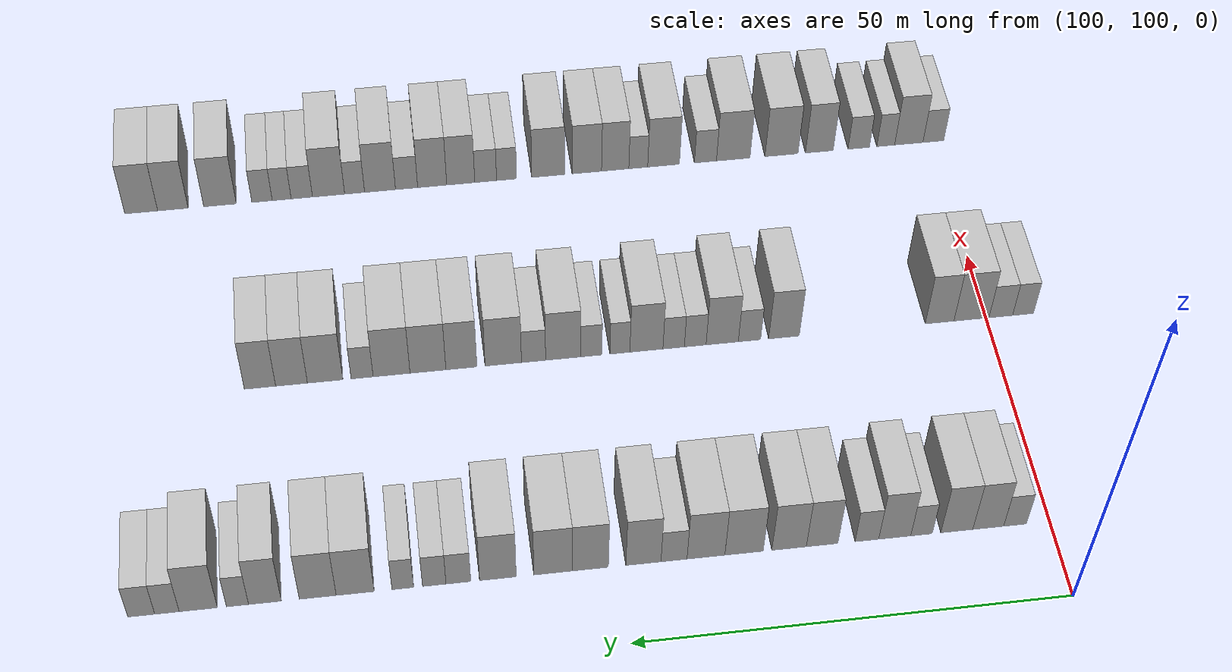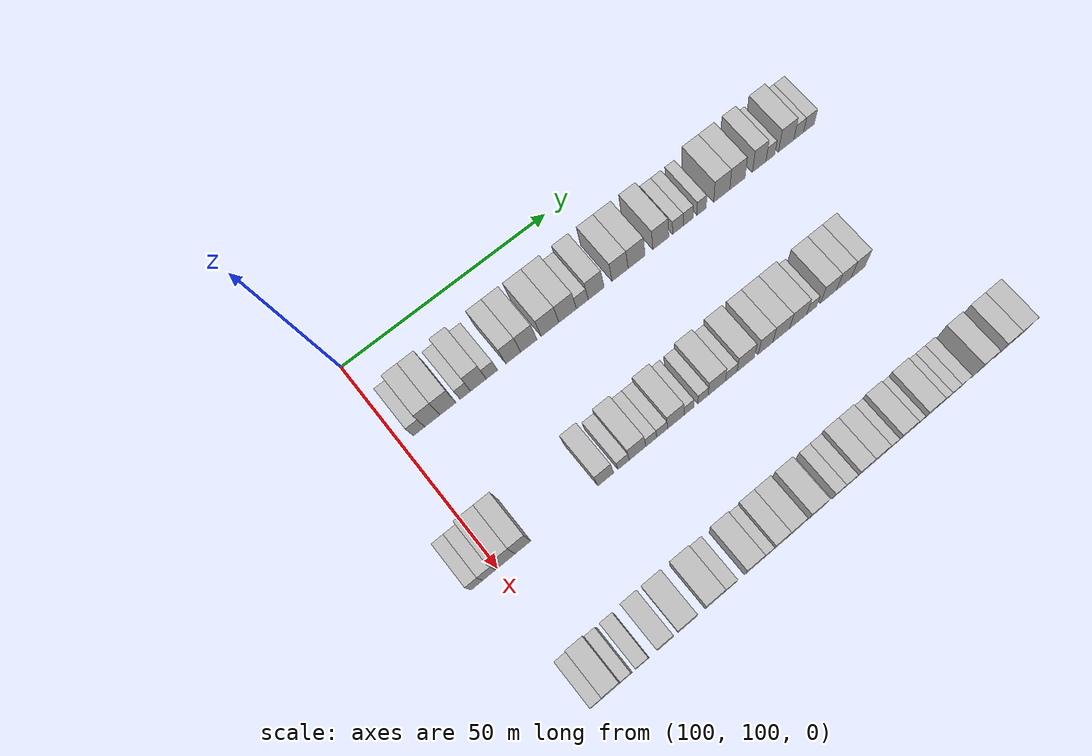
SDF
<sdf version="1.6">
 <world name="default">
  <model name="building_811">
   <static>1</static>
   <pose>115.0000 104.1184 0 0.000000 0.000000 0.000000</pose>
   <link name="link">
    <pose>0 0 3.00 0 0 0</pose>
    <collision name="collision"><geometry><box><size>10.0000 2.6853 6.0000</size></box></geometry></collision>
    <visual name="visual">
     <cast_shadows>0</cast_shadows>
     <geometry><box><size>10.0000 2.6853 6.0000</size></box></geometry>
     <material>
      <script>
       <uri>model://HANNAS_wall/materials/scripts</uri>
       <uri>model://HANNAS_wall/materials/textures</uri>
       <name>vrc/HANNAS_wall</name>
      </script>
     </material>
    </visual>
   </link>
  </model>
  <model name="building_812">
   <static>1</static>
   <pose>115.0000 107.2685 0 0.000000 0.000000 0.000000</pose>
   <link name="link">
    <pose>0 0 4.50 0 0 0</pose>
    <collision name="collision"><geometry><box><size>10.0000 3.6147 9.0000</size></box></geometry></collision>
    <visual name="visual">
     <cast_shadows>0</cast_shadows>
     <geometry><box><size>10.0000 3.6147 9.0000</size></box></geometry>
     <material>
      <script>
       <uri>model://HANNAS_wall/materials/scripts</uri>
       <uri>model://HANNAS_wall/materials/textures</uri>
       <name>vrc/HANNAS_wall</name>
      </script>
     </material>
    </visual>
   </link>
  </model>
  <model name="building_813">
   <static>1</static>
   <pose>115.0000 110.9510 0 0.000000 0.000000 0.000000</pose>
   <link name="link">
    <pose>0 0 4.50 0 0 0</pose>
    <collision name="collision"><geometry><box><size>10.0000 3.7504 9.0000</size></box></geometry></collision>
    <visual name="visual">
     <cast_shadows>0</cast_shadows>
     <geometry><box><size>10.0000 3.7504 9.0000</size></box></geometry>
     <material>
      <script>
       <uri>model://HANNAS_wall/materials/scripts</uri>
       <uri>model://HANNAS_wall/materials/textures</uri>
       <name>vrc/HANNAS_wall</name>
      </script>
     </material>
    </visual>
   </link>
  </model>
  <model name="building_814">
   <static>1</static>
   <pose>115.0000 115.0779 0 0.000000 0.000000 0.000000</pose>
   <link name="link">
    <pose>0 0 3.00 0 0 0</pose>
    <collision name="collision"><geometry><box><size>10.0000 2.5034 6.0000</size></box></geometry></collision>
    <visual name="visual">
     <cast_shadows>0</cast_shadows>
     <geometry><box><size>10.0000 2.5034 6.0000</size></box></geometry>
     <material>
      <script>
       <uri>model://HANNAS_wall/materials/scripts</uri>
       <uri>model://HANNAS_wall/materials/textures</uri>
       <name>vrc/HANNAS_wall</name>
      </script>
     </material>
    </visual>
   </link>
  </model>
  <model name="building_815">
   <static>1</static>
   <pose>115.0000 118.1943 0 0.000000 0.000000 0.000000</pose>
   <link name="link">
    <pose>0 0 4.50 0 0 0</pose>
    <collision name="collision"><geometry><box><size>10.0000 3.7294 9.0000</size></box></geometry></collision>
    <visual name="visual">
     <cast_shadows>0</cast_shadows>
     <geometry><box><size>10.0000 3.7294 9.0000</size></box></geometry>
     <material>
      <script>
       <uri>model://HANNAS_wall/materials/scripts</uri>
       <uri>model://HANNAS_wall/materials/textures</uri>
       <name>vrc/HANNAS_wall</name>
      </script>
     </material>
    </visual>
   </link>
  </model>
  <model name="building_816">
   <static>1</static>
   <pose>115.0000 121.4324 0 0.000000 0.000000 0.000000</pose>
   <link name="link">
    <pose>0 0 3.00 0 0 0</pose>
    <collision name="collision"><geometry><box><size>10.0000 2.7469 6.0000</size></box></geometry></collision>
    <visual name="visual">
     <cast_shadows>0</cast_shadows>
     <geometry><box><size>10.0000 2.7469 6.0000</size></box></geometry>
     <material>
      <script>
       <uri>model://HANNAS_wall/materials/scripts</uri>
       <uri>model://HANNAS_wall/materials/textures</uri>
       <name>vrc/HANNAS_wall</name>
      </script>
     </material>
    </visual>
   </link>
  </model>
  <model name="building_817">
   <static>1</static>
   <pose>115.0000 126.6344 0 0.000000 0.000000 0.000000</pose>
   <link name="link">
    <pose>0 0 4.50 0 0 0</pose>
    <collision name="collision"><geometry><box><size>10.0000 3.6572 9.0000</size></box></geometry></collision>
    <visual name="visual">
     <cast_shadows>0</cast_shadows>
     <geometry><box><size>10.0000 3.6572 9.0000</size></box></geometry>
     <material>
      <script>
       <uri>model://HANNAS_wall/materials/scripts</uri>
       <uri>model://HANNAS_wall/materials/textures</uri>
       <name>vrc/HANNAS_wall</name>
      </script>
     </material>
    </visual>
   </link>
  </model>
  <model name="building_818">
   <static>1</static>
   <pose>115.0000 130.4544 0 0.000000 0.000000 0.000000</pose>
   <link name="link">
    <pose>0 0 4.50 0 0 0</pose>
    <collision name="collision"><geometry><box><size>10.0000 3.9827 9.0000</size></box></geometry></collision>
    <visual name="visual">
     <cast_shadows>0</cast_shadows>
     <geometry><box><size>10.0000 3.9827 9.0000</size></box></geometry>
     <material>
      <script>
       <uri>model://HANNAS_wall/materials/scripts</uri>
       <uri>model://HANNAS_wall/materials/textures</uri>
       <name>vrc/HANNAS_wall</name>
      </script>
     </material>
    </visual>
   </link>
  </model>
  <model name="building_819">
   <static>1</static>
   <pose>115.0000 135.6509 0 0.000000 0.000000 0.000000</pose>
   <link name="link">
    <pose>0 0 4.50 0 0 0</pose>
    <collision name="collision"><geometry><box><size>10.0000 4.4103 9.0000</size></box></geometry></collision>
    <visual name="visual">
     <cast_shadows>0</cast_shadows>
     <geometry><box><size>10.0000 4.4103 9.0000</size></box></geometry>
     <material>
      <script>
       <uri>model://HANNAS_wall/materials/scripts</uri>
       <uri>model://HANNAS_wall/materials/textures</uri>
       <name>vrc/HANNAS_wall</name>
      </script>
     </material>
    </visual>
   </link>
  </model>
  <model name="building_820">
   <static>1</static>
   <pose>115.0000 140.0304 0 0.000000 0.000000 0.000000</pose>
   <link name="link">
    <pose>0 0 4.50 0 0 0</pose>
    <collision name="collision"><geometry><box><size>10.0000 4.3486 9.0000</size></box></geometry></collision>
    <visual name="visual">
     <cast_shadows>0</cast_shadows>
     <geometry><box><size>10.0000 4.3486 9.0000</size></box></geometry>
     <material>
      <script>
       <uri>model://HANNAS_wall/materials/scripts</uri>
       <uri>model://HANNAS_wall/materials/textures</uri>
       <name>vrc/HANNAS_wall</name>
      </script>
     </material>
    </visual>
   </link>
  </model>
  <model name="building_821">
   <static>1</static>
   <pose>115.0000 143.6980 0 0.000000 0.000000 0.000000</pose>
   <link name="link">
    <pose>0 0 3.00 0 0 0</pose>
    <collision name="collision"><geometry><box><size>10.0000 2.9866 6.0000</size></box></geometry></collision>
    <visual name="visual">
     <cast_shadows>0</cast_shadows>
     <geometry><box><size>10.0000 2.9866 6.0000</size></box></geometry>
     <material>
      <script>
       <uri>model://HANNAS_wall/materials/scripts</uri>
       <uri>model://HANNAS_wall/materials/textures</uri>
       <name>vrc/HANNAS_wall</name>
      </script>
     </material>
    </visual>
   </link>
  </model>
  <model name="building_822">
   <static>1</static>
   <pose>115.0000 147.1989 0 0.000000 0.000000 0.000000</pose>
   <link name="link">
    <pose>0 0 4.50 0 0 0</pose>
    <collision name="collision"><geometry><box><size>10.0000 4.0150 9.0000</size></box></geometry></collision>
    <visual name="visual">
     <cast_shadows>0</cast_shadows>
     <geometry><box><size>10.0000 4.0150 9.0000</size></box></geometry>
     <material>
      <script>
       <uri>model://HANNAS_wall/materials/scripts</uri>
       <uri>model://HANNAS_wall/materials/textures</uri>
       <name>vrc/HANNAS_wall</name>
      </script>
     </material>
    </visual>
   </link>
  </model>
  <model name="building_823">
   <static>1</static>
   <pose>115.0000 153.2614 0 0.000000 0.000000 0.000000</pose>
   <link name="link">
    <pose>0 0 4.50 0 0 0</pose>
    <collision name="collision"><geometry><box><size>10.0000 4.1101 9.0000</size></box></geometry></collision>
    <visual name="visual">
     <cast_shadows>0</cast_shadows>
     <geometry><box><size>10.0000 4.1101 9.0000</size></box></geometry>
     <material>
      <script>
       <uri>model://HANNAS_wall/materials/scripts</uri>
       <uri>model://HANNAS_wall/materials/textures</uri>
       <name>vrc/HANNAS_wall</name>
      </script>
     </material>
    </visual>
   </link>
  </model>
  <model name="building_824">
   <static>1</static>
   <pose>115.0000 157.4975 0 0.000000 0.000000 0.000000</pose>
   <link name="link">
    <pose>0 0 4.50 0 0 0</pose>
    <collision name="collision"><geometry><box><size>10.0000 4.3620 9.0000</size></box></geometry></collision>
    <visual name="visual">
     <cast_shadows>0</cast_shadows>
     <geometry><box><size>10.0000 4.3620 9.0000</size></box></geometry>
     <material>
      <script>
       <uri>model://HANNAS_wall/materials/scripts</uri>
       <uri>model://HANNAS_wall/materials/textures</uri>
       <name>vrc/HANNAS_wall</name>
      </script>
     </material>
    </visual>
   </link>
  </model>
  <model name="building_825">
   <static>1</static>
   <pose>115.0000 163.7490 0 0.000000 0.000000 0.000000</pose>
   <link name="link">
    <pose>0 0 4.50 0 0 0</pose>
    <collision name="collision"><geometry><box><size>10.0000 4.1409 9.0000</size></box></geometry></collision>
    <visual name="visual">
     <cast_shadows>0</cast_shadows>
     <geometry><box><size>10.0000 4.1409 9.0000</size></box></geometry>
     <material>
      <script>
       <uri>model://HANNAS_wall/materials/scripts</uri>
       <uri>model://HANNAS_wall/materials/textures</uri>
       <name>vrc/HANNAS_wall</name>
      </script>
     </material>
    </visual>
   </link>
  </model>
  <model name="building_826">
   <static>1</static>
   <pose>115.0000 168.2130 0 0.000000 0.000000 0.000000</pose>
   <link name="link">
    <pose>0 0 3.00 0 0 0</pose>
    <collision name="collision"><geometry><box><size>10.0000 2.7871 6.0000</size></box></geometry></collision>
    <visual name="visual">
     <cast_shadows>0</cast_shadows>
     <geometry><box><size>10.0000 2.7871 6.0000</size></box></geometry>
     <material>
      <script>
       <uri>model://HANNAS_wall/materials/scripts</uri>
       <uri>model://HANNAS_wall/materials/textures</uri>
       <name>vrc/HANNAS_wall</name>
      </script>
     </material>
    </visual>
   </link>
  </model>
  <model name="building_827">
   <static>1</static>
   <pose>115.0000 170.9270 0 0.000000 0.000000 0.000000</pose>
   <link name="link">
    <pose>0 0 3.00 0 0 0</pose>
    <collision name="collision"><geometry><box><size>10.0000 2.6410 6.0000</size></box></geometry></collision>
    <visual name="visual">
     <cast_shadows>0</cast_shadows>
     <geometry><box><size>10.0000 2.6410 6.0000</size></box></geometry>
     <material>
      <script>
       <uri>model://HANNAS_wall/materials/scripts</uri>
       <uri>model://HANNAS_wall/materials/textures</uri>
       <name>vrc/HANNAS_wall</name>
      </script>
     </material>
    </visual>
   </link>
  </model>
  <model name="building_828">
   <static>1</static>
   <pose>115.0000 174.4641 0 0.000000 0.000000 0.000000</pose>
   <link name="link">
    <pose>0 0 3.00 0 0 0</pose>
    <collision name="collision"><geometry><box><size>10.0000 2.4331 6.0000</size></box></geometry></collision>
    <visual name="visual">
     <cast_shadows>0</cast_shadows>
     <geometry><box><size>10.0000 2.4331 6.0000</size></box></geometry>
     <material>
      <script>
       <uri>model://HANNAS_wall/materials/scripts</uri>
       <uri>model://HANNAS_wall/materials/textures</uri>
       <name>vrc/HANNAS_wall</name>
      </script>
     </material>
    </visual>
   </link>
  </model>
  <model name="building_829">
   <static>1</static>
   <pose>115.0000 179.8125 0 0.000000 0.000000 0.000000</pose>
   <link name="link">
    <pose>0 0 4.50 0 0 0</pose>
    <collision name="collision"><geometry><box><size>10.0000 4.2635 9.0000</size></box></geometry></collision>
    <visual name="visual">
     <cast_shadows>0</cast_shadows>
     <geometry><box><size>10.0000 4.2635 9.0000</size></box></geometry>
     <material>
      <script>
       <uri>model://HANNAS_wall/materials/scripts</uri>
       <uri>model://HANNAS_wall/materials/textures</uri>
       <name>vrc/HANNAS_wall</name>
      </script>
     </material>
    </visual>
   </link>
  </model>
  <model name="building_830">
   <static>1</static>
   <pose>115.0000 184.0027 0 0.000000 0.000000 0.000000</pose>
   <link name="link">
    <pose>0 0 4.50 0 0 0</pose>
    <collision name="collision"><geometry><box><size>10.0000 4.1170 9.0000</size></box></geometry></collision>
    <visual name="visual">
     <cast_shadows>0</cast_shadows>
     <geometry><box><size>10.0000 4.1170 9.0000</size></box></geometry>
     <material>
      <script>
       <uri>model://HANNAS_wall/materials/scripts</uri>
       <uri>model://HANNAS_wall/materials/textures</uri>
       <name>vrc/HANNAS_wall</name>
      </script>
     </material>
    </visual>
   </link>
  </model>
  <model name="building_831">
   <static>1</static>
   <pose>115.0000 189.8861 0 0.000000 0.000000 0.000000</pose>
   <link name="link">
    <pose>0 0 4.50 0 0 0</pose>
    <collision name="collision"><geometry><box><size>10.0000 3.6497 9.0000</size></box></geometry></collision>
    <visual name="visual">
     <cast_shadows>0</cast_shadows>
     <geometry><box><size>10.0000 3.6497 9.0000</size></box></geometry>
     <material>
      <script>
       <uri>model://HANNAS_wall/materials/scripts</uri>
       <uri>model://HANNAS_wall/materials/textures</uri>
       <name>vrc/HANNAS_wall</name>
      </script>
     </material>
    </visual>
   </link>
  </model>
  <model name="building_832">
   <static>1</static>
   <pose>115.0000 192.9405 0 0.000000 0.000000 0.000000</pose>
   <link name="link">
    <pose>0 0 3.00 0 0 0</pose>
    <collision name="collision"><geometry><box><size>10.0000 2.4592 6.0000</size></box></geometry></collision>
    <visual name="visual">
     <cast_shadows>0</cast_shadows>
     <geometry><box><size>10.0000 2.4592 6.0000</size></box></geometry>
     <material>
      <script>
       <uri>model://HANNAS_wall/materials/scripts</uri>
       <uri>model://HANNAS_wall/materials/textures</uri>
       <name>vrc/HANNAS_wall</name>
      </script>
     </material>
    </visual>
   </link>
  </model>
  <model name="building_833">
   <static>1</static>
   <pose>115.0000 197.2885 0 0.000000 0.000000 0.000000</pose>
   <link name="link">
    <pose>0 0 4.50 0 0 0</pose>
    <collision name="collision"><geometry><box><size>10.0000 4.2367 9.0000</size></box></geometry></collision>
    <visual name="visual">
     <cast_shadows>0</cast_shadows>
     <geometry><box><size>10.0000 4.2367 9.0000</size></box></geometry>
     <material>
      <script>
       <uri>model://HANNAS_wall/materials/scripts</uri>
       <uri>model://HANNAS_wall/materials/textures</uri>
       <name>vrc/HANNAS_wall</name>
      </script>
     </material>
    </visual>
   </link>
  </model>
  <model name="building_834">
   <static>1</static>
   <pose>115.0000 200.7582 0 0.000000 0.000000 0.000000</pose>
   <link name="link">
    <pose>0 0 3.00 0 0 0</pose>
    <collision name="collision"><geometry><box><size>10.0000 2.7027 6.0000</size></box></geometry></collision>
    <visual name="visual">
     <cast_shadows>0</cast_shadows>
     <geometry><box><size>10.0000 2.7027 6.0000</size></box></geometry>
     <material>
      <script>
       <uri>model://HANNAS_wall/materials/scripts</uri>
       <uri>model://HANNAS_wall/materials/textures</uri>
       <name>vrc/HANNAS_wall</name>
      </script>
     </material>
    </visual>
   </link>
  </model>
  <model name="building_835">
   <static>1</static>
   <pose>115.0000 203.5942 0 0.000000 0.000000 0.000000</pose>
   <link name="link">
    <pose>0 0 3.00 0 0 0</pose>
    <collision name="collision"><geometry><box><size>10.0000 2.9694 6.0000</size></box></geometry></collision>
    <visual name="visual">
     <cast_shadows>0</cast_shadows>
     <geometry><box><size>10.0000 2.9694 6.0000</size></box></geometry>
     <material>
      <script>
       <uri>model://HANNAS_wall/materials/scripts</uri>
       <uri>model://HANNAS_wall/materials/textures</uri>
       <name>vrc/HANNAS_wall</name>
      </script>
     </material>
    </visual>
   </link>
  </model>
  <model name="building_1036">
   <static>1</static>
   <pose>145.0000 95.3506 0 0.000000 0.000000 0.000000</pose>
   <link name="link">
    <pose>0 0 3.00 0 0 0</pose>
    <collision name="collision"><geometry><box><size>10.0000 2.6429 6.0000</size></box></geometry></collision>
    <visual name="visual">
     <cast_shadows>0</cast_shadows>
     <geometry><box><size>10.0000 2.6429 6.0000</size></box></geometry>
     <material>
      <script>
       <uri>model://HANNAS_wall/materials/scripts</uri>
       <uri>model://HANNAS_wall/materials/textures</uri>
       <name>vrc/HANNAS_wall</name>
      </script>
     </material>
    </visual>
   </link>
  </model>
  <model name="building_1037">
   <static>1</static>
   <pose>145.0000 98.1691 0 0.000000 0.000000 0.000000</pose>
   <link name="link">
    <pose>0 0 3.00 0 0 0</pose>
    <collision name="collision"><geometry><box><size>10.0000 2.9940 6.0000</size></box></geometry></collision>
    <visual name="visual">
     <cast_shadows>0</cast_shadows>
     <geometry><box><size>10.0000 2.9940 6.0000</size></box></geometry>
     <material>
      <script>
       <uri>model://HANNAS_wall/materials/scripts</uri>
       <uri>model://HANNAS_wall/materials/textures</uri>
       <name>vrc/HANNAS_wall</name>
      </script>
     </material>
    </visual>
   </link>
  </model>
  <model name="building_1038">
   <static>1</static>
   <pose>145.0000 101.8803 0 0.000000 0.000000 0.000000</pose>
   <link name="link">
    <pose>0 0 4.50 0 0 0</pose>
    <collision name="collision"><geometry><box><size>10.0000 4.4284 9.0000</size></box></geometry></collision>
    <visual name="visual">
     <cast_shadows>0</cast_shadows>
     <geometry><box><size>10.0000 4.4284 9.0000</size></box></geometry>
     <material>
      <script>
       <uri>model://HANNAS_wall/materials/scripts</uri>
       <uri>model://HANNAS_wall/materials/textures</uri>
       <name>vrc/HANNAS_wall</name>
      </script>
     </material>
    </visual>
   </link>
  </model>
  <model name="building_1039">
   <static>1</static>
   <pose>145.0000 105.9055 0 0.000000 0.000000 0.000000</pose>
   <link name="link">
    <pose>0 0 4.50 0 0 0</pose>
    <collision name="collision"><geometry><box><size>10.0000 3.6221 9.0000</size></box></geometry></collision>
    <visual name="visual">
     <cast_shadows>0</cast_shadows>
     <geometry><box><size>10.0000 3.6221 9.0000</size></box></geometry>
     <material>
      <script>
       <uri>model://HANNAS_wall/materials/scripts</uri>
       <uri>model://HANNAS_wall/materials/textures</uri>
       <name>vrc/HANNAS_wall</name>
      </script>
     </material>
    </visual>
   </link>
  </model>
  <model name="building_1040">
   <static>1</static>
   <pose>145.0000 125.4423 0 0.000000 0.000000 0.000000</pose>
   <link name="link">
    <pose>0 0 4.50 0 0 0</pose>
    <collision name="collision"><geometry><box><size>10.0000 3.8171 9.0000</size></box></geometry></collision>
    <visual name="visual">
     <cast_shadows>0</cast_shadows>
     <geometry><box><size>10.0000 3.8171 9.0000</size></box></geometry>
     <material>
      <script>
       <uri>model://HANNAS_wall/materials/scripts</uri>
       <uri>model://HANNAS_wall/materials/textures</uri>
       <name>vrc/HANNAS_wall</name>
      </script>
     </material>
    </visual>
   </link>
  </model>
  <model name="building_1041">
   <static>1</static>
   <pose>145.0000 129.7371 0 0.000000 0.000000 0.000000</pose>
   <link name="link">
    <pose>0 0 3.00 0 0 0</pose>
    <collision name="collision"><geometry><box><size>10.0000 2.7726 6.0000</size></box></geometry></collision>
    <visual name="visual">
     <cast_shadows>0</cast_shadows>
     <geometry><box><size>10.0000 2.7726 6.0000</size></box></geometry>
     <material>
      <script>
       <uri>model://HANNAS_wall/materials/scripts</uri>
       <uri>model://HANNAS_wall/materials/textures</uri>
       <name>vrc/HANNAS_wall</name>
      </script>
     </material>
    </visual>
   </link>
  </model>
  <model name="building_1042">
   <static>1</static>
   <pose>145.0000 133.1251 0 0.000000 0.000000 0.000000</pose>
   <link name="link">
    <pose>0 0 4.50 0 0 0</pose>
    <collision name="collision"><geometry><box><size>10.0000 4.0035 9.0000</size></box></geometry></collision>
    <visual name="visual">
     <cast_shadows>0</cast_shadows>
     <geometry><box><size>10.0000 4.0035 9.0000</size></box></geometry>
     <material>
      <script>
       <uri>model://HANNAS_wall/materials/scripts</uri>
       <uri>model://HANNAS_wall/materials/textures</uri>
       <name>vrc/HANNAS_wall</name>
      </script>
     </material>
    </visual>
   </link>
  </model>
  <model name="building_1043">
   <static>1</static>
   <pose>145.0000 136.4717 0 0.000000 0.000000 0.000000</pose>
   <link name="link">
    <pose>0 0 3.00 0 0 0</pose>
    <collision name="collision"><geometry><box><size>10.0000 2.6896 6.0000</size></box></geometry></collision>
    <visual name="visual">
     <cast_shadows>0</cast_shadows>
     <geometry><box><size>10.0000 2.6896 6.0000</size></box></geometry>
     <material>
      <script>
       <uri>model://HANNAS_wall/materials/scripts</uri>
       <uri>model://HANNAS_wall/materials/textures</uri>
       <name>vrc/HANNAS_wall</name>
      </script>
     </material>
    </visual>
   </link>
  </model>
  <model name="building_1044">
   <static>1</static>
   <pose>145.0000 139.1422 0 0.000000 0.000000 0.000000</pose>
   <link name="link">
    <pose>0 0 3.00 0 0 0</pose>
    <collision name="collision"><geometry><box><size>10.0000 2.6515 6.0000</size></box></geometry></collision>
    <visual name="visual">
     <cast_shadows>0</cast_shadows>
     <geometry><box><size>10.0000 2.6515 6.0000</size></box></geometry>
     <material>
      <script>
       <uri>model://HANNAS_wall/materials/scripts</uri>
       <uri>model://HANNAS_wall/materials/textures</uri>
       <name>vrc/HANNAS_wall</name>
      </script>
     </material>
    </visual>
   </link>
  </model>
  <model name="building_1045">
   <static>1</static>
   <pose>145.0000 142.5141 0 0.000000 0.000000 0.000000</pose>
   <link name="link">
    <pose>0 0 4.50 0 0 0</pose>
    <collision name="collision"><geometry><box><size>10.0000 4.0924 9.0000</size></box></geometry></collision>
    <visual name="visual">
     <cast_shadows>0</cast_shadows>
     <geometry><box><size>10.0000 4.0924 9.0000</size></box></geometry>
     <material>
      <script>
       <uri>model://HANNAS_wall/materials/scripts</uri>
       <uri>model://HANNAS_wall/materials/textures</uri>
       <name>vrc/HANNAS_wall</name>
      </script>
     </material>
    </visual>
   </link>
  </model>
  <model name="building_1046">
   <static>1</static>
   <pose>145.0000 145.7862 0 0.000000 0.000000 0.000000</pose>
   <link name="link">
    <pose>0 0 3.00 0 0 0</pose>
    <collision name="collision"><geometry><box><size>10.0000 2.4518 6.0000</size></box></geometry></collision>
    <visual name="visual">
     <cast_shadows>0</cast_shadows>
     <geometry><box><size>10.0000 2.4518 6.0000</size></box></geometry>
     <material>
      <script>
       <uri>model://HANNAS_wall/materials/scripts</uri>
       <uri>model://HANNAS_wall/materials/textures</uri>
       <name>vrc/HANNAS_wall</name>
      </script>
     </material>
    </visual>
   </link>
  </model>
  <model name="building_1047">
   <static>1</static>
   <pose>145.0000 149.3143 0 0.000000 0.000000 0.000000</pose>
   <link name="link">
    <pose>0 0 3.00 0 0 0</pose>
    <collision name="collision"><geometry><box><size>10.0000 2.6044 6.0000</size></box></geometry></collision>
    <visual name="visual">
     <cast_shadows>0</cast_shadows>
     <geometry><box><size>10.0000 2.6044 6.0000</size></box></geometry>
     <material>
      <script>
       <uri>model://HANNAS_wall/materials/scripts</uri>
       <uri>model://HANNAS_wall/materials/textures</uri>
       <name>vrc/HANNAS_wall</name>
      </script>
     </material>
    </visual>
   </link>
  </model>
  <model name="building_1048">
   <static>1</static>
   <pose>145.0000 152.7663 0 0.000000 0.000000 0.000000</pose>
   <link name="link">
    <pose>0 0 4.50 0 0 0</pose>
    <collision name="collision"><geometry><box><size>10.0000 4.2996 9.0000</size></box></geometry></collision>
    <visual name="visual">
     <cast_shadows>0</cast_shadows>
     <geometry><box><size>10.0000 4.2996 9.0000</size></box></geometry>
     <material>
      <script>
       <uri>model://HANNAS_wall/materials/scripts</uri>
       <uri>model://HANNAS_wall/materials/textures</uri>
       <name>vrc/HANNAS_wall</name>
      </script>
     </material>
    </visual>
   </link>
  </model>
  <model name="building_1049">
   <static>1</static>
   <pose>145.0000 156.3941 0 0.000000 0.000000 0.000000</pose>
   <link name="link">
    <pose>0 0 3.00 0 0 0</pose>
    <collision name="collision"><geometry><box><size>10.0000 2.9559 6.0000</size></box></geometry></collision>
    <visual name="visual">
     <cast_shadows>0</cast_shadows>
     <geometry><box><size>10.0000 2.9559 6.0000</size></box></geometry>
     <material>
      <script>
       <uri>model://HANNAS_wall/materials/scripts</uri>
       <uri>model://HANNAS_wall/materials/textures</uri>
       <name>vrc/HANNAS_wall</name>
      </script>
     </material>
    </visual>
   </link>
  </model>
  <model name="building_1050">
   <static>1</static>
   <pose>145.0000 160.0921 0 0.000000 0.000000 0.000000</pose>
   <link name="link">
    <pose>0 0 4.50 0 0 0</pose>
    <collision name="collision"><geometry><box><size>10.0000 4.4401 9.0000</size></box></geometry></collision>
    <visual name="visual">
     <cast_shadows>0</cast_shadows>
     <geometry><box><size>10.0000 4.4401 9.0000</size></box></geometry>
     <material>
      <script>
       <uri>model://HANNAS_wall/materials/scripts</uri>
       <uri>model://HANNAS_wall/materials/textures</uri>
       <name>vrc/HANNAS_wall</name>
      </script>
     </material>
    </visual>
   </link>
  </model>
  <model name="building_1051">
   <static>1</static>
   <pose>145.0000 165.2027 0 0.000000 0.000000 0.000000</pose>
   <link name="link">
    <pose>0 0 4.50 0 0 0</pose>
    <collision name="collision"><geometry><box><size>10.0000 3.7811 9.0000</size></box></geometry></collision>
    <visual name="visual">
     <cast_shadows>0</cast_shadows>
     <geometry><box><size>10.0000 3.7811 9.0000</size></box></geometry>
     <material>
      <script>
       <uri>model://HANNAS_wall/materials/scripts</uri>
       <uri>model://HANNAS_wall/materials/textures</uri>
       <name>vrc/HANNAS_wall</name>
      </script>
     </material>
    </visual>
   </link>
  </model>
  <model name="building_1052">
   <static>1</static>
   <pose>145.0000 169.2725 0 0.000000 0.000000 0.000000</pose>
   <link name="link">
    <pose>0 0 4.50 0 0 0</pose>
    <collision name="collision"><geometry><box><size>10.0000 4.3585 9.0000</size></box></geometry></collision>
    <visual name="visual">
     <cast_shadows>0</cast_shadows>
     <geometry><box><size>10.0000 4.3585 9.0000</size></box></geometry>
     <material>
      <script>
       <uri>model://HANNAS_wall/materials/scripts</uri>
       <uri>model://HANNAS_wall/materials/textures</uri>
       <name>vrc/HANNAS_wall</name>
      </script>
     </material>
    </visual>
   </link>
  </model>
  <model name="building_1053">
   <static>1</static>
   <pose>145.0000 173.6881 0 0.000000 0.000000 0.000000</pose>
   <link name="link">
    <pose>0 0 4.50 0 0 0</pose>
    <collision name="collision"><geometry><box><size>10.0000 4.4727 9.0000</size></box></geometry></collision>
    <visual name="visual">
     <cast_shadows>0</cast_shadows>
     <geometry><box><size>10.0000 4.4727 9.0000</size></box></geometry>
     <material>
      <script>
       <uri>model://HANNAS_wall/materials/scripts</uri>
       <uri>model://HANNAS_wall/materials/textures</uri>
       <name>vrc/HANNAS_wall</name>
      </script>
     </material>
    </visual>
   </link>
  </model>
  <model name="building_1054">
   <static>1</static>
   <pose>145.0000 177.2541 0 0.000000 0.000000 0.000000</pose>
   <link name="link">
    <pose>0 0 3.00 0 0 0</pose>
    <collision name="collision"><geometry><box><size>10.0000 2.6593 6.0000</size></box></geometry></collision>
    <visual name="visual">
     <cast_shadows>0</cast_shadows>
     <geometry><box><size>10.0000 2.6593 6.0000</size></box></geometry>
     <material>
      <script>
       <uri>model://HANNAS_wall/materials/scripts</uri>
       <uri>model://HANNAS_wall/materials/textures</uri>
       <name>vrc/HANNAS_wall</name>
      </script>
     </material>
    </visual>
   </link>
  </model>
  <model name="building_1055">
   <static>1</static>
   <pose>145.0000 181.7258 0 0.000000 0.000000 0.000000</pose>
   <link name="link">
    <pose>0 0 4.50 0 0 0</pose>
    <collision name="collision"><geometry><box><size>10.0000 4.2842 9.0000</size></box></geometry></collision>
    <visual name="visual">
     <cast_shadows>0</cast_shadows>
     <geometry><box><size>10.0000 4.2842 9.0000</size></box></geometry>
     <material>
      <script>
       <uri>model://HANNAS_wall/materials/scripts</uri>
       <uri>model://HANNAS_wall/materials/textures</uri>
       <name>vrc/HANNAS_wall</name>
      </script>
     </material>
    </visual>
   </link>
  </model>
  <model name="building_1056">
   <static>1</static>
   <pose>145.0000 185.7813 0 0.000000 0.000000 0.000000</pose>
   <link name="link">
    <pose>0 0 4.50 0 0 0</pose>
    <collision name="collision"><geometry><box><size>10.0000 3.8268 9.0000</size></box></geometry></collision>
    <visual name="visual">
     <cast_shadows>0</cast_shadows>
     <geometry><box><size>10.0000 3.8268 9.0000</size></box></geometry>
     <material>
      <script>
       <uri>model://HANNAS_wall/materials/scripts</uri>
       <uri>model://HANNAS_wall/materials/textures</uri>
       <name>vrc/HANNAS_wall</name>
      </script>
     </material>
    </visual>
   </link>
  </model>
  <model name="building_1057">
   <static>1</static>
   <pose>145.0000 189.5743 0 0.000000 0.000000 0.000000</pose>
   <link name="link">
    <pose>0 0 4.50 0 0 0</pose>
    <collision name="collision"><geometry><box><size>10.0000 3.7593 9.0000</size></box></geometry></collision>
    <visual name="visual">
     <cast_shadows>0</cast_shadows>
     <geometry><box><size>10.0000 3.7593 9.0000</size></box></geometry>
     <material>
      <script>
       <uri>model://HANNAS_wall/materials/scripts</uri>
       <uri>model://HANNAS_wall/materials/textures</uri>
       <name>vrc/HANNAS_wall</name>
      </script>
     </material>
    </visual>
   </link>
  </model>
  <model name="building_1248">
   <static>1</static>
   <pose>175.0000 99.7029 0 0.000000 0.000000 0.000000</pose>
   <link name="link">
    <pose>0 0 3.00 0 0 0</pose>
    <collision name="collision"><geometry><box><size>10.0000 2.8138 6.0000</size></box></geometry></collision>
    <visual name="visual">
     <cast_shadows>0</cast_shadows>
     <geometry><box><size>10.0000 2.8138 6.0000</size></box></geometry>
     <material>
      <script>
       <uri>model://HANNAS_wall/materials/scripts</uri>
       <uri>model://HANNAS_wall/materials/textures</uri>
       <name>vrc/HANNAS_wall</name>
      </script>
     </material>
    </visual>
   </link>
  </model>
  <model name="building_1249">
   <static>1</static>
   <pose>175.0000 103.0222 0 0.000000 0.000000 0.000000</pose>
   <link name="link">
    <pose>0 0 4.50 0 0 0</pose>
    <collision name="collision"><geometry><box><size>10.0000 3.8248 9.0000</size></box></geometry></collision>
    <visual name="visual">
     <cast_shadows>0</cast_shadows>
     <geometry><box><size>10.0000 3.8248 9.0000</size></box></geometry>
     <material>
      <script>
       <uri>model://HANNAS_wall/materials/scripts</uri>
       <uri>model://HANNAS_wall/materials/textures</uri>
       <name>vrc/HANNAS_wall</name>
      </script>
     </material>
    </visual>
   </link>
  </model>
  <model name="building_1250">
   <static>1</static>
   <pose>175.0000 106.1377 0 0.000000 0.000000 0.000000</pose>
   <link name="link">
    <pose>0 0 3.00 0 0 0</pose>
    <collision name="collision"><geometry><box><size>10.0000 2.4062 6.0000</size></box></geometry></collision>
    <visual name="visual">
     <cast_shadows>0</cast_shadows>
     <geometry><box><size>10.0000 2.4062 6.0000</size></box></geometry>
     <material>
      <script>
       <uri>model://HANNAS_wall/materials/scripts</uri>
       <uri>model://HANNAS_wall/materials/textures</uri>
       <name>vrc/HANNAS_wall</name>
      </script>
     </material>
    </visual>
   </link>
  </model>
  <model name="building_1251">
   <static>1</static>
   <pose>175.0000 109.7832 0 0.000000 0.000000 0.000000</pose>
   <link name="link">
    <pose>0 0 3.00 0 0 0</pose>
    <collision name="collision"><geometry><box><size>10.0000 2.8849 6.0000</size></box></geometry></collision>
    <visual name="visual">
     <cast_shadows>0</cast_shadows>
     <geometry><box><size>10.0000 2.8849 6.0000</size></box></geometry>
     <material>
      <script>
       <uri>model://HANNAS_wall/materials/scripts</uri>
       <uri>model://HANNAS_wall/materials/textures</uri>
       <name>vrc/HANNAS_wall</name>
      </script>
     </material>
    </visual>
   </link>
  </model>
  <model name="building_1252">
   <static>1</static>
   <pose>175.0000 115.0860 0 0.000000 0.000000 0.000000</pose>
   <link name="link">
    <pose>0 0 4.50 0 0 0</pose>
    <collision name="collision"><geometry><box><size>10.0000 3.7206 9.0000</size></box></geometry></collision>
    <visual name="visual">
     <cast_shadows>0</cast_shadows>
     <geometry><box><size>10.0000 3.7206 9.0000</size></box></geometry>
     <material>
      <script>
       <uri>model://HANNAS_wall/materials/scripts</uri>
       <uri>model://HANNAS_wall/materials/textures</uri>
       <name>vrc/HANNAS_wall</name>
      </script>
     </material>
    </visual>
   </link>
  </model>
  <model name="building_1253">
   <static>1</static>
   <pose>175.0000 120.1590 0 0.000000 0.000000 0.000000</pose>
   <link name="link">
    <pose>0 0 4.50 0 0 0</pose>
    <collision name="collision"><geometry><box><size>10.0000 4.4254 9.0000</size></box></geometry></collision>
    <visual name="visual">
     <cast_shadows>0</cast_shadows>
     <geometry><box><size>10.0000 4.4254 9.0000</size></box></geometry>
     <material>
      <script>
       <uri>model://HANNAS_wall/materials/scripts</uri>
       <uri>model://HANNAS_wall/materials/textures</uri>
       <name>vrc/HANNAS_wall</name>
      </script>
     </material>
    </visual>
   </link>
  </model>
  <model name="building_1254">
   <static>1</static>
   <pose>175.0000 126.6098 0 0.000000 0.000000 0.000000</pose>
   <link name="link">
    <pose>0 0 4.50 0 0 0</pose>
    <collision name="collision"><geometry><box><size>10.0000 4.4763 9.0000</size></box></geometry></collision>
    <visual name="visual">
     <cast_shadows>0</cast_shadows>
     <geometry><box><size>10.0000 4.4763 9.0000</size></box></geometry>
     <material>
      <script>
       <uri>model://HANNAS_wall/materials/scripts</uri>
       <uri>model://HANNAS_wall/materials/textures</uri>
       <name>vrc/HANNAS_wall</name>
      </script>
     </material>
    </visual>
   </link>
  </model>
  <model name="building_1255">
   <static>1</static>
   <pose>175.0000 130.3142 0 0.000000 0.000000 0.000000</pose>
   <link name="link">
    <pose>0 0 3.00 0 0 0</pose>
    <collision name="collision"><geometry><box><size>10.0000 2.9324 6.0000</size></box></geometry></collision>
    <visual name="visual">
     <cast_shadows>0</cast_shadows>
     <geometry><box><size>10.0000 2.9324 6.0000</size></box></geometry>
     <material>
      <script>
       <uri>model://HANNAS_wall/materials/scripts</uri>
       <uri>model://HANNAS_wall/materials/textures</uri>
       <name>vrc/HANNAS_wall</name>
      </script>
     </material>
    </visual>
   </link>
  </model>
  <model name="building_1256">
   <static>1</static>
   <pose>175.0000 135.8850 0 0.000000 0.000000 0.000000</pose>
   <link name="link">
    <pose>0 0 4.50 0 0 0</pose>
    <collision name="collision"><geometry><box><size>10.0000 4.2093 9.0000</size></box></geometry></collision>
    <visual name="visual">
     <cast_shadows>0</cast_shadows>
     <geometry><box><size>10.0000 4.2093 9.0000</size></box></geometry>
     <material>
      <script>
       <uri>model://HANNAS_wall/materials/scripts</uri>
       <uri>model://HANNAS_wall/materials/textures</uri>
       <name>vrc/HANNAS_wall</name>
      </script>
     </material>
    </visual>
   </link>
  </model>
  <model name="building_1257">
   <static>1</static>
   <pose>175.0000 139.2413 0 0.000000 0.000000 0.000000</pose>
   <link name="link">
    <pose>0 0 3.00 0 0 0</pose>
    <collision name="collision"><geometry><box><size>10.0000 2.5033 6.0000</size></box></geometry></collision>
    <visual name="visual">
     <cast_shadows>0</cast_shadows>
     <geometry><box><size>10.0000 2.5033 6.0000</size></box></geometry>
     <material>
      <script>
       <uri>model://HANNAS_wall/materials/scripts</uri>
       <uri>model://HANNAS_wall/materials/textures</uri>
       <name>vrc/HANNAS_wall</name>
      </script>
     </material>
    </visual>
   </link>
  </model>
  <model name="building_1258">
   <static>1</static>
   <pose>175.0000 142.3000 0 0.000000 0.000000 0.000000</pose>
   <link name="link">
    <pose>0 0 4.50 0 0 0</pose>
    <collision name="collision"><geometry><box><size>10.0000 3.6142 9.0000</size></box></geometry></collision>
    <visual name="visual">
     <cast_shadows>0</cast_shadows>
     <geometry><box><size>10.0000 3.6142 9.0000</size></box></geometry>
     <material>
      <script>
       <uri>model://HANNAS_wall/materials/scripts</uri>
       <uri>model://HANNAS_wall/materials/textures</uri>
       <name>vrc/HANNAS_wall</name>
      </script>
     </material>
    </visual>
   </link>
  </model>
  <model name="building_1259">
   <static>1</static>
   <pose>175.0000 146.0531 0 0.000000 0.000000 0.000000</pose>
   <link name="link">
    <pose>0 0 4.50 0 0 0</pose>
    <collision name="collision"><geometry><box><size>10.0000 3.8920 9.0000</size></box></geometry></collision>
    <visual name="visual">
     <cast_shadows>0</cast_shadows>
     <geometry><box><size>10.0000 3.8920 9.0000</size></box></geometry>
     <material>
      <script>
       <uri>model://HANNAS_wall/materials/scripts</uri>
       <uri>model://HANNAS_wall/materials/textures</uri>
       <name>vrc/HANNAS_wall</name>
      </script>
     </material>
    </visual>
   </link>
  </model>
  <model name="building_1260">
   <static>1</static>
   <pose>175.0000 151.1507 0 0.000000 0.000000 0.000000</pose>
   <link name="link">
    <pose>0 0 4.50 0 0 0</pose>
    <collision name="collision"><geometry><box><size>10.0000 4.3031 9.0000</size></box></geometry></collision>
    <visual name="visual">
     <cast_shadows>0</cast_shadows>
     <geometry><box><size>10.0000 4.3031 9.0000</size></box></geometry>
     <material>
      <script>
       <uri>model://HANNAS_wall/materials/scripts</uri>
       <uri>model://HANNAS_wall/materials/textures</uri>
       <name>vrc/HANNAS_wall</name>
      </script>
     </material>
    </visual>
   </link>
  </model>
  <model name="building_1261">
   <static>1</static>
   <pose>175.0000 156.6129 0 0.000000 0.000000 0.000000</pose>
   <link name="link">
    <pose>0 0 3.00 0 0 0</pose>
    <collision name="collision"><geometry><box><size>10.0000 2.6212 6.0000</size></box></geometry></collision>
    <visual name="visual">
     <cast_shadows>0</cast_shadows>
     <geometry><box><size>10.0000 2.6212 6.0000</size></box></geometry>
     <material>
      <script>
       <uri>model://HANNAS_wall/materials/scripts</uri>
       <uri>model://HANNAS_wall/materials/textures</uri>
       <name>vrc/HANNAS_wall</name>
      </script>
     </material>
    </visual>
   </link>
  </model>
  <model name="building_1262">
   <static>1</static>
   <pose>175.0000 159.3515 0 0.000000 0.000000 0.000000</pose>
   <link name="link">
    <pose>0 0 3.00 0 0 0</pose>
    <collision name="collision"><geometry><box><size>10.0000 2.8560 6.0000</size></box></geometry></collision>
    <visual name="visual">
     <cast_shadows>0</cast_shadows>
     <geometry><box><size>10.0000 2.8560 6.0000</size></box></geometry>
     <material>
      <script>
       <uri>model://HANNAS_wall/materials/scripts</uri>
       <uri>model://HANNAS_wall/materials/textures</uri>
       <name>vrc/HANNAS_wall</name>
      </script>
     </material>
    </visual>
   </link>
  </model>
  <model name="building_1263">
   <static>1</static>
   <pose>175.0000 162.6145 0 0.000000 0.000000 0.000000</pose>
   <link name="link">
    <pose>0 0 4.50 0 0 0</pose>
    <collision name="collision"><geometry><box><size>10.0000 3.6700 9.0000</size></box></geometry></collision>
    <visual name="visual">
     <cast_shadows>0</cast_shadows>
     <geometry><box><size>10.0000 3.6700 9.0000</size></box></geometry>
     <material>
      <script>
       <uri>model://HANNAS_wall/materials/scripts</uri>
       <uri>model://HANNAS_wall/materials/textures</uri>
       <name>vrc/HANNAS_wall</name>
      </script>
     </material>
    </visual>
   </link>
  </model>
  <model name="building_1264">
   <static>1</static>
   <pose>175.0000 166.3486 0 0.000000 0.000000 0.000000</pose>
   <link name="link">
    <pose>0 0 4.50 0 0 0</pose>
    <collision name="collision"><geometry><box><size>10.0000 3.7982 9.0000</size></box></geometry></collision>
    <visual name="visual">
     <cast_shadows>0</cast_shadows>
     <geometry><box><size>10.0000 3.7982 9.0000</size></box></geometry>
     <material>
      <script>
       <uri>model://HANNAS_wall/materials/scripts</uri>
       <uri>model://HANNAS_wall/materials/textures</uri>
       <name>vrc/HANNAS_wall</name>
      </script>
     </material>
    </visual>
   </link>
  </model>
  <model name="building_1265">
   <static>1</static>
   <pose>175.0000 169.6925 0 0.000000 0.000000 0.000000</pose>
   <link name="link">
    <pose>0 0 3.00 0 0 0</pose>
    <collision name="collision"><geometry><box><size>10.0000 2.8896 6.0000</size></box></geometry></collision>
    <visual name="visual">
     <cast_shadows>0</cast_shadows>
     <geometry><box><size>10.0000 2.8896 6.0000</size></box></geometry>
     <material>
      <script>
       <uri>model://HANNAS_wall/materials/scripts</uri>
       <uri>model://HANNAS_wall/materials/textures</uri>
       <name>vrc/HANNAS_wall</name>
      </script>
     </material>
    </visual>
   </link>
  </model>
  <model name="building_1266">
   <static>1</static>
   <pose>175.0000 173.1490 0 0.000000 0.000000 0.000000</pose>
   <link name="link">
    <pose>0 0 4.50 0 0 0</pose>
    <collision name="collision"><geometry><box><size>10.0000 4.0235 9.0000</size></box></geometry></collision>
    <visual name="visual">
     <cast_shadows>0</cast_shadows>
     <geometry><box><size>10.0000 4.0235 9.0000</size></box></geometry>
     <material>
      <script>
       <uri>model://HANNAS_wall/materials/scripts</uri>
       <uri>model://HANNAS_wall/materials/textures</uri>
       <name>vrc/HANNAS_wall</name>
      </script>
     </material>
    </visual>
   </link>
  </model>
  <model name="building_1267">
   <static>1</static>
   <pose>175.0000 176.4548 0 0.000000 0.000000 0.000000</pose>
   <link name="link">
    <pose>0 0 3.00 0 0 0</pose>
    <collision name="collision"><geometry><box><size>10.0000 2.5880 6.0000</size></box></geometry></collision>
    <visual name="visual">
     <cast_shadows>0</cast_shadows>
     <geometry><box><size>10.0000 2.5880 6.0000</size></box></geometry>
     <material>
      <script>
       <uri>model://HANNAS_wall/materials/scripts</uri>
       <uri>model://HANNAS_wall/materials/textures</uri>
       <name>vrc/HANNAS_wall</name>
      </script>
     </material>
    </visual>
   </link>
  </model>
  <model name="building_1268">
   <static>1</static>
   <pose>175.0000 179.8370 0 0.000000 0.000000 0.000000</pose>
   <link name="link">
    <pose>0 0 4.50 0 0 0</pose>
    <collision name="collision"><geometry><box><size>10.0000 4.1764 9.0000</size></box></geometry></collision>
    <visual name="visual">
     <cast_shadows>0</cast_shadows>
     <geometry><box><size>10.0000 4.1764 9.0000</size></box></geometry>
     <material>
      <script>
       <uri>model://HANNAS_wall/materials/scripts</uri>
       <uri>model://HANNAS_wall/materials/textures</uri>
       <name>vrc/HANNAS_wall</name>
      </script>
     </material>
    </visual>
   </link>
  </model>
  <model name="building_1269">
   <static>1</static>
   <pose>175.0000 183.3031 0 0.000000 0.000000 0.000000</pose>
   <link name="link">
    <pose>0 0 3.00 0 0 0</pose>
    <collision name="collision"><geometry><box><size>10.0000 2.7559 6.0000</size></box></geometry></collision>
    <visual name="visual">
     <cast_shadows>0</cast_shadows>
     <geometry><box><size>10.0000 2.7559 6.0000</size></box></geometry>
     <material>
      <script>
       <uri>model://HANNAS_wall/materials/scripts</uri>
       <uri>model://HANNAS_wall/materials/textures</uri>
       <name>vrc/HANNAS_wall</name>
      </script>
     </material>
    </visual>
   </link>
  </model>
  <model name="building_1270">
   <static>1</static>
   <pose>175.0000 185.9057 0 0.000000 0.000000 0.000000</pose>
   <link name="link">
    <pose>0 0 3.00 0 0 0</pose>
    <collision name="collision"><geometry><box><size>10.0000 2.4492 6.0000</size></box></geometry></collision>
    <visual name="visual">
     <cast_shadows>0</cast_shadows>
     <geometry><box><size>10.0000 2.4492 6.0000</size></box></geometry>
     <material>
      <script>
       <uri>model://HANNAS_wall/materials/scripts</uri>
       <uri>model://HANNAS_wall/materials/textures</uri>
       <name>vrc/HANNAS_wall</name>
      </script>
     </material>
    </visual>
   </link>
  </model>
  <model name="building_1271">
   <static>1</static>
   <pose>175.0000 188.4421 0 0.000000 0.000000 0.000000</pose>
   <link name="link">
    <pose>0 0 3.00 0 0 0</pose>
    <collision name="collision"><geometry><box><size>10.0000 2.6237 6.0000</size></box></geometry></collision>
    <visual name="visual">
     <cast_shadows>0</cast_shadows>
     <geometry><box><size>10.0000 2.6237 6.0000</size></box></geometry>
     <material>
      <script>
       <uri>model://HANNAS_wall/materials/scripts</uri>
       <uri>model://HANNAS_wall/materials/textures</uri>
       <name>vrc/HANNAS_wall</name>
      </script>
     </material>
    </visual>
   </link>
  </model>
  <model name="building_1272">
   <static>1</static>
   <pose>175.0000 193.8532 0 0.000000 0.000000 0.000000</pose>
   <link name="link">
    <pose>0 0 4.50 0 0 0</pose>
    <collision name="collision"><geometry><box><size>10.0000 4.1984 9.0000</size></box></geometry></collision>
    <visual name="visual">
     <cast_shadows>0</cast_shadows>
     <geometry><box><size>10.0000 4.1984 9.0000</size></box></geometry>
     <material>
      <script>
       <uri>model://HANNAS_wall/materials/scripts</uri>
       <uri>model://HANNAS_wall/materials/textures</uri>
       <name>vrc/HANNAS_wall</name>
      </script>
     </material>
    </visual>
   </link>
  </model>
  <model name="building_1273">
   <static>1</static>
   <pose>175.0000 199.9090 0 0.000000 0.000000 0.000000</pose>
   <link name="link">
    <pose>0 0 4.50 0 0 0</pose>
    <collision name="collision"><geometry><box><size>10.0000 3.9132 9.0000</size></box></geometry></collision>
    <visual name="visual">
     <cast_shadows>0</cast_shadows>
     <geometry><box><size>10.0000 3.9132 9.0000</size></box></geometry>
     <material>
      <script>
       <uri>model://HANNAS_wall/materials/scripts</uri>
       <uri>model://HANNAS_wall/materials/textures</uri>
       <name>vrc/HANNAS_wall</name>
      </script>
     </material>
    </visual>
   </link>
  </model>
  <model name="building_1274">
   <static>1</static>
   <pose>175.0000 203.9681 0 0.000000 0.000000 0.000000</pose>
   <link name="link">
    <pose>0 0 4.50 0 0 0</pose>
    <collision name="collision"><geometry><box><size>10.0000 4.2048 9.0000</size></box></geometry></collision>
    <visual name="visual">
     <cast_shadows>0</cast_shadows>
     <geometry><box><size>10.0000 4.2048 9.0000</size></box></geometry>
     <material>
      <script>
       <uri>model://HANNAS_wall/materials/scripts</uri>
       <uri>model://HANNAS_wall/materials/textures</uri>
       <name>vrc/HANNAS_wall</name>
      </script>
     </material>
    </visual>
   </link>
  </model>
 </world>
</sdf>
